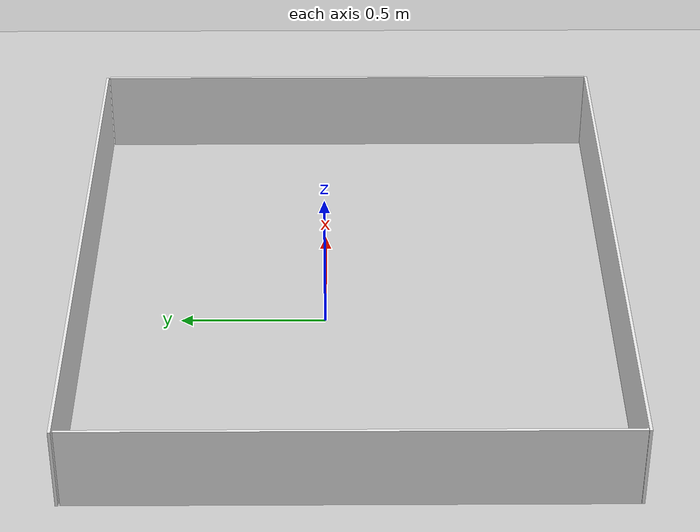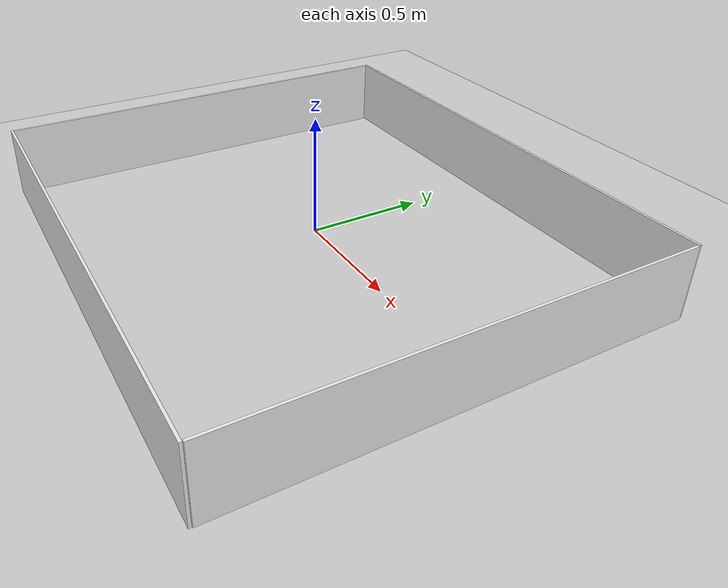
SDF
<sdf version="1.7">
 <world name="default">
  <light name="sun" type="directional">
   <cast_shadows>0</cast_shadows>
   <pose>0 0 10 0 -0 0</pose>
   <diffuse>0.8 0.8 0.8 1</diffuse>
   <specular>0.2 0.2 0.2 1</specular>
   <attenuation>
    <range>1000</range>
    <constant>0.9</constant>
    <linear>0.01</linear>
    <quadratic>0.001</quadratic>
   </attenuation>
   <direction>-0.5 0.1 -0.9</direction>
   <spot><inner_angle>0</inner_angle><outer_angle>0</outer_angle><falloff>0</falloff></spot>
  </light>
  <model name="ground_plane">
   <static>1</static>
   <link name="link">
    <collision name="collision">
     <geometry><plane><normal>0 0 1</normal><size>100 100</size></plane></geometry>
     <surface><friction><ode><mu>100</mu><mu2>50</mu2></ode></friction></surface>
    </collision>
    <visual name="visual">
     <cast_shadows>0</cast_shadows>
     <geometry><plane><normal>0 0 1</normal><size>100 100</size></plane></geometry>
     <material>
      <script><uri>file://media/materials/scripts/gazebo.material</uri><name>Gazebo/Grey</name></script>
     </material>
    </visual>
   </link>
  </model>
  <physics type="ode">
   <real_time_update_rate>1000</real_time_update_rate>
   <ode>
    <solver>
     <type>quick</type>
     <iters>70</iters>
     <sor>1.3</sor>
     <use_dynamic_moi_rescaling>0</use_dynamic_moi_rescaling>
    </solver>
    <constraints>
     <cfm>0</cfm>
     <erp>0.2</erp>
     <contact_max_correcting_vel>100</contact_max_correcting_vel>
     <contact_surface_layer>0.001</contact_surface_layer>
    </constraints>
   </ode>
   <max_step_size>0.001</max_step_size>
   <real_time_factor>1</real_time_factor>
  </physics>
  <scene><ambient>0.4 0.4 0.4 1</ambient><background>0.7 0.7 0.7 1</background><shadows>1</shadows></scene>
  <spherical_coordinates>
   <surface_model>EARTH_WGS84</surface_model>
   <latitude_deg>0</latitude_deg>
   <longitude_deg>0</longitude_deg>
   <elevation>0</elevation>
   <heading_deg>0</heading_deg>
  </spherical_coordinates>
  <model name="working_wall">
   <link name="link">
    <inertial>
     <mass>1</mass>
     <inertia><ixx>1</ixx><ixy>0</ixy><ixz>0</ixz><iyy>1</iyy><iyz>0</iyz><izz>1</izz></inertia>
    </inertial>
    <visual name="visual">
     <cast_shadows>0</cast_shadows>
     <geometry><box><size>2.08 0.01 0.3</size></box></geometry>
     <material>
      <script><uri>file://media/materials/scripts/gazebo.material</uri><name>Gazebo/White</name></script>
      <shader type="vertex"><normal_map>__default__</normal_map></shader>
      <ambient>1 1 1 1</ambient>
      <diffuse>1 1 1 1</diffuse>
      <specular>0 0 0 1</specular>
      <emissive>0 0 0 1</emissive>
     </material>
    </visual>
    <collision name="collision">
     <geometry><box><size>2.08 0.01 0.3</size></box></geometry>
     <surface>
      <friction>
       <ode><mu>1</mu><mu2>1</mu2><fdir1>0 0 0</fdir1><slip1>0</slip1><slip2>0</slip2></ode>
       <torsional>
        <coefficient>1</coefficient>
        <patch_radius>0</patch_radius>
        <surface_radius>0</surface_radius>
        <use_patch_radius>1</use_patch_radius>
        <ode><slip>0</slip></ode>
       </torsional>
      </friction>
      <bounce><restitution_coefficient>0</restitution_coefficient><threshold>1e+06</threshold></bounce>
      <contact>
       <collide_without_contact>0</collide_without_contact>
       <collide_without_contact_bitmask>1</collide_without_contact_bitmask>
       <collide_bitmask>1</collide_bitmask>
       <ode>
        <soft_cfm>0</soft_cfm>
        <soft_erp>0.2</soft_erp>
        <kp>1e+13</kp>
        <kd>1</kd>
        <max_vel>0.01</max_vel>
        <min_depth>0</min_depth>
       </ode>
       <bullet>
        <split_impulse>1</split_impulse>
        <split_impulse_penetration_threshold>-0.01</split_impulse_penetration_threshold>
        <soft_cfm>0</soft_cfm>
        <soft_erp>0.2</soft_erp>
        <kp>1e+13</kp>
        <kd>1</kd>
       </bullet>
      </contact>
     </surface>
    </collision>
   </link>
   <static>1</static>
   <pose>0.096876 0.832985 0.15 0 -0 0</pose>
  </model>
  <model name="working_wall_0">
   <link name="link">
    <inertial>
     <mass>1</mass>
     <inertia><ixx>1</ixx><ixy>0</ixy><ixz>0</ixz><iyy>1</iyy><iyz>0</iyz><izz>1</izz></inertia>
    </inertial>
    <visual name="visual">
     <cast_shadows>0</cast_shadows>
     <geometry><box><size>2.08 0.01 0.3</size></box></geometry>
     <material>
      <script><uri>file://media/materials/scripts/gazebo.material</uri><name>Gazebo/White</name></script>
      <shader type="vertex"><normal_map>__default__</normal_map></shader>
      <ambient>1 1 1 1</ambient>
      <diffuse>1 1 1 1</diffuse>
      <specular>0 0 0 1</specular>
      <emissive>0 0 0 1</emissive>
     </material>
    </visual>
    <collision name="collision">
     <geometry><box><size>2.08 0.01 0.3</size></box></geometry>
     <surface>
      <friction>
       <ode><mu>1</mu><mu2>1</mu2><fdir1>0 0 0</fdir1><slip1>0</slip1><slip2>0</slip2></ode>
       <torsional>
        <coefficient>1</coefficient>
        <patch_radius>0</patch_radius>
        <surface_radius>0</surface_radius>
        <use_patch_radius>1</use_patch_radius>
        <ode><slip>0</slip></ode>
       </torsional>
      </friction>
      <bounce><restitution_coefficient>0</restitution_coefficient><threshold>1e+06</threshold></bounce>
      <contact>
       <collide_without_contact>0</collide_without_contact>
       <collide_without_contact_bitmask>1</collide_without_contact_bitmask>
       <collide_bitmask>1</collide_bitmask>
       <ode>
        <soft_cfm>0</soft_cfm>
        <soft_erp>0.2</soft_erp>
        <kp>1e+13</kp>
        <kd>1</kd>
        <max_vel>0.01</max_vel>
        <min_depth>0</min_depth>
       </ode>
       <bullet>
        <split_impulse>1</split_impulse>
        <split_impulse_penetration_threshold>-0.01</split_impulse_penetration_threshold>
        <soft_cfm>0</soft_cfm>
        <soft_erp>0.2</soft_erp>
        <kp>1e+13</kp>
        <kd>1</kd>
       </bullet>
      </contact>
     </surface>
    </collision>
   </link>
   <static>1</static>
   <pose>0.098435 -0.993087 0.15 0 -0 0</pose>
  </model>
  <model name="working_wall_1">
   <link name="link">
    <inertial>
     <mass>1</mass>
     <inertia><ixx>1</ixx><ixy>0</ixy><ixz>0</ixz><iyy>1</iyy><iyz>0</iyz><izz>1</izz></inertia>
    </inertial>
    <visual name="visual">
     <cast_shadows>0</cast_shadows>
     <geometry><box><size>1.81 0.01 0.3</size></box></geometry>
     <material>
      <script><uri>file://media/materials/scripts/gazebo.material</uri><name>Gazebo/White</name></script>
      <shader type="vertex"><normal_map>__default__</normal_map></shader>
      <ambient>1 1 1 1</ambient>
      <diffuse>1 1 1 1</diffuse>
      <specular>0 0 0 1</specular>
      <emissive>0 0 0 1</emissive>
     </material>
    </visual>
    <collision name="collision">
     <geometry><box><size>1.81 0.01 0.3</size></box></geometry>
     <surface>
      <friction>
       <ode><mu>1</mu><mu2>1</mu2><fdir1>0 0 0</fdir1><slip1>0</slip1><slip2>0</slip2></ode>
       <torsional>
        <coefficient>1</coefficient>
        <patch_radius>0</patch_radius>
        <surface_radius>0</surface_radius>
        <use_patch_radius>1</use_patch_radius>
        <ode><slip>0</slip></ode>
       </torsional>
      </friction>
      <bounce><restitution_coefficient>0</restitution_coefficient><threshold>1e+06</threshold></bounce>
      <contact>
       <collide_without_contact>0</collide_without_contact>
       <collide_without_contact_bitmask>1</collide_without_contact_bitmask>
       <collide_bitmask>1</collide_bitmask>
       <ode>
        <soft_cfm>0</soft_cfm>
        <soft_erp>0.2</soft_erp>
        <kp>1e+13</kp>
        <kd>1</kd>
        <max_vel>0.01</max_vel>
        <min_depth>0</min_depth>
       </ode>
       <bullet>
        <split_impulse>1</split_impulse>
        <split_impulse_penetration_threshold>-0.01</split_impulse_penetration_threshold>
        <soft_cfm>0</soft_cfm>
        <soft_erp>0.2</soft_erp>
        <kp>1e+13</kp>
        <kd>1</kd>
       </bullet>
      </contact>
     </surface>
    </collision>
   </link>
   <static>1</static>
   <pose>-0.936563 -0.081979 0.15 0 -0 1.5708</pose>
  </model>
  <model name="working_wall_2">
   <link name="link">
    <inertial>
     <mass>1</mass>
     <inertia><ixx>1</ixx><ixy>0</ixy><ixz>0</ixz><iyy>1</iyy><iyz>0</iyz><izz>1</izz></inertia>
    </inertial>
    <visual name="visual">
     <cast_shadows>0</cast_shadows>
     <geometry><box><size>1.81 0.01 0.3</size></box></geometry>
     <material>
      <script><uri>file://media/materials/scripts/gazebo.material</uri><name>Gazebo/White</name></script>
      <shader type="vertex"><normal_map>__default__</normal_map></shader>
      <ambient>1 1 1 1</ambient>
      <diffuse>1 1 1 1</diffuse>
      <specular>0 0 0 1</specular>
      <emissive>0 0 0 1</emissive>
     </material>
    </visual>
    <collision name="collision">
     <geometry><box><size>1.81 0.01 0.3</size></box></geometry>
     <surface>
      <friction>
       <ode><mu>1</mu><mu2>1</mu2><fdir1>0 0 0</fdir1><slip1>0</slip1><slip2>0</slip2></ode>
       <torsional>
        <coefficient>1</coefficient>
        <patch_radius>0</patch_radius>
        <surface_radius>0</surface_radius>
        <use_patch_radius>1</use_patch_radius>
        <ode><slip>0</slip></ode>
       </torsional>
      </friction>
      <bounce><restitution_coefficient>0</restitution_coefficient><threshold>1e+06</threshold></bounce>
      <contact>
       <collide_without_contact>0</collide_without_contact>
       <collide_without_contact_bitmask>1</collide_without_contact_bitmask>
       <collide_bitmask>1</collide_bitmask>
       <ode>
        <soft_cfm>0</soft_cfm>
        <soft_erp>0.2</soft_erp>
        <kp>1e+13</kp>
        <kd>1</kd>
        <max_vel>0.01</max_vel>
        <min_depth>0</min_depth>
       </ode>
       <bullet>
        <split_impulse>1</split_impulse>
        <split_impulse_penetration_threshold>-0.01</split_impulse_penetration_threshold>
        <soft_cfm>0</soft_cfm>
        <soft_erp>0.2</soft_erp>
        <kp>1e+13</kp>
        <kd>1</kd>
       </bullet>
      </contact>
     </surface>
    </collision>
   </link>
   <static>1</static>
   <pose>1.13688 -0.081186 0.15 0 -0 1.5708</pose>
  </model>
  <audio><device>default</device></audio>
  <light name="user_point_light_0" type="point">
   <pose>0 0 1 0 -0 0</pose>
   <diffuse>0.2 0.2 0.2 1</diffuse>
   <specular>0.1 0.1 0.1 1</specular>
   <attenuation>
    <range>10</range>
    <constant>0.5</constant>
    <linear>0.01</linear>
    <quadratic>0.001</quadratic>
   </attenuation>
   <cast_shadows>0</cast_shadows>
   <direction>0 0 -1</direction>
   <spot><inner_angle>0</inner_angle><outer_angle>0</outer_angle><falloff>0</falloff></spot>
  </light>
  <light name="user_point_light_1" type="point">
   <pose>0 -1 1 0 -0 0</pose>
   <diffuse>0.2 0.2 0.2 1</diffuse>
   <specular>0.1 0.1 0.1 1</specular>
   <attenuation>
    <range>10</range>
    <constant>0.5</constant>
    <linear>0.01</linear>
    <quadratic>0.001</quadratic>
   </attenuation>
   <cast_shadows>0</cast_shadows>
   <direction>0 0 -1</direction>
   <spot><inner_angle>0</inner_angle><outer_angle>0</outer_angle><falloff>0</falloff></spot>
  </light>
  <light name="user_point_light_2" type="point">
   <pose>0 1 1 0 -0 0</pose>
   <diffuse>0.2 0.2 0.2 1</diffuse>
   <specular>0.1 0.1 0.1 1</specular>
   <attenuation>
    <range>10</range>
    <constant>0.5</constant>
    <linear>0.01</linear>
    <quadratic>0.001</quadratic>
   </attenuation>
   <cast_shadows>0</cast_shadows>
   <direction>0 0 -1</direction>
   <spot><inner_angle>0</inner_angle><outer_angle>0</outer_angle><falloff>0</falloff></spot>
  </light>
  <gravity>0 0 -9.8</gravity>
  <magnetic_field>6e-06 2.3e-05 -4.2e-05</magnetic_field>
  <atmosphere type="adiabatic"/>
 </world>
</sdf>
